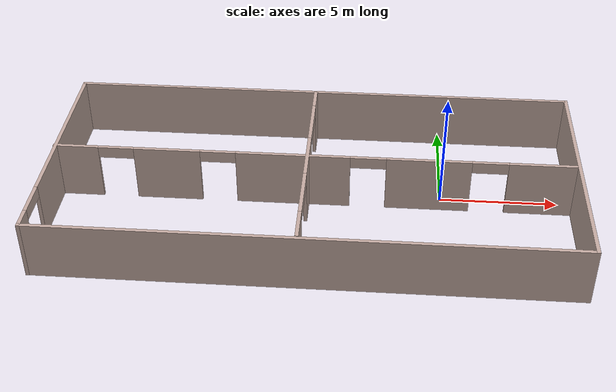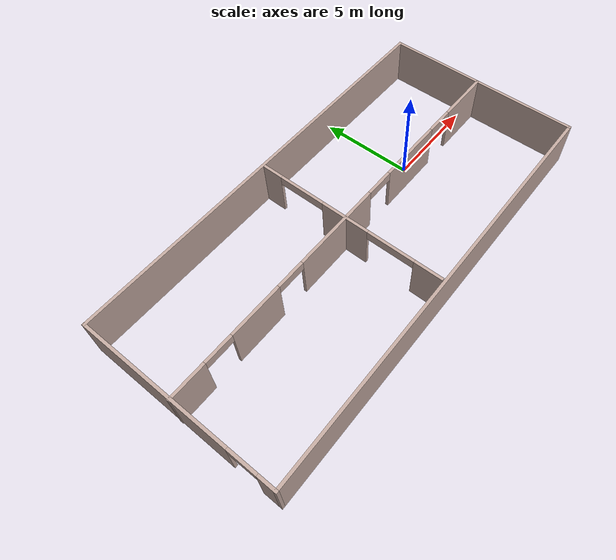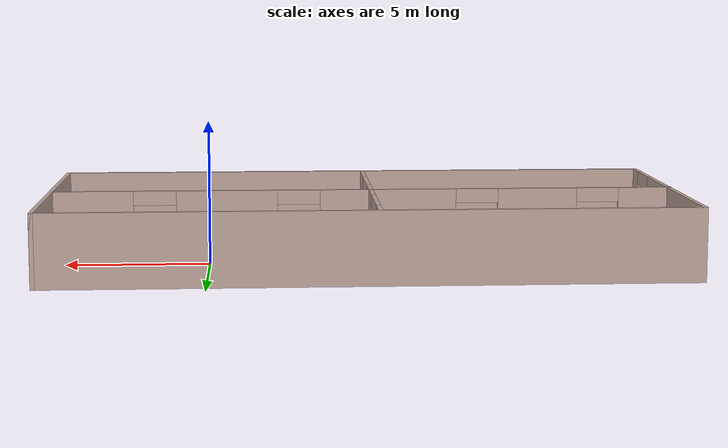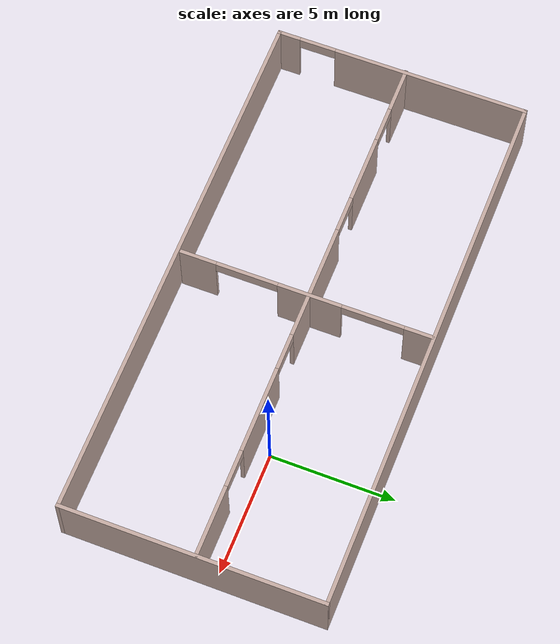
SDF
<?xml version='1.0'?>
<sdf version='1.6'>
  <model name='mybuilding'>
    <pose frame=''>-5.39438 -0.795609 0 0 -0 0</pose>
    <link name='Wall_1'>
      <pose frame=''>-10.9097 0 0 0 -0 1.5708</pose>
      <visual name='Wall_1_Visual_0'>
        <pose frame=''>-4.76721 0 1.25 0 -0 0</pose>
        <geometry>
          <box>
            <size>0.965586 0.15 2.5</size>
          </box>
        </geometry>
        <material>
          <script>
            <uri>file://media/materials/scripts/gazebo.material</uri>
            <name>Gazebo/Grey</name>
          </script>
          <ambient>0.760784 0.662745 0.627451 1</ambient>
        </material>
        <meta>
          <layer>0</layer>
        </meta>
      </visual>
      <collision name='Wall_1_Collision_0'>
        <geometry>
          <box>
            <size>0.965586 0.15 2.5</size>
          </box>
        </geometry>
        <pose frame=''>-4.76721 0 1.25 0 -0 0</pose>
      </collision>
      <visual name='Wall_1_Visual_1'>
        <pose frame=''>1.23279 0 1.25 0 -0 0</pose>
        <geometry>
          <box>
            <size>8.03441 0.15 2.5</size>
          </box>
        </geometry>
        <material>
          <script>
            <uri>file://media/materials/scripts/gazebo.material</uri>
            <name>Gazebo/Grey</name>
          </script>
          <ambient>0.760784 0.662745 0.627451 1</ambient>
        </material>
        <meta>
          <layer>0</layer>
        </meta>
      </visual>
      <collision name='Wall_1_Collision_1'>
        <geometry>
          <box>
            <size>8.03441 0.15 2.5</size>
          </box>
        </geometry>
        <pose frame=''>1.23279 0 1.25 0 -0 0</pose>
      </collision>
      <visual name='Wall_1_Visual_2'>
        <pose frame=''>-3.53441 0 2.25 0 -0 0</pose>
        <geometry>
          <box>
            <size>1.5 0.15 0.5</size>
          </box>
        </geometry>
        <material>
          <script>
            <uri>file://media/materials/scripts/gazebo.material</uri>
            <name>Gazebo/Grey</name>
          </script>
          <ambient>0.760784 0.662745 0.627451 1</ambient>
        </material>
        <meta>
          <layer>0</layer>
        </meta>
      </visual>
      <collision name='Wall_1_Collision_2'>
        <geometry>
          <box>
            <size>1.5 0.15 0.5</size>
          </box>
        </geometry>
        <pose frame=''>-3.53441 0 2.25 0 -0 0</pose>
      </collision>
    </link>
    <link name='Wall_2'>
      <collision name='Wall_2_Collision'>
        <geometry>
          <box>
            <size>22 0.15 2.5</size>
          </box>
        </geometry>
        <pose frame=''>0 0 1.25 0 -0 0</pose>
      </collision>
      <visual name='Wall_2_Visual'>
        <pose frame=''>0 0 1.25 0 -0 0</pose>
        <geometry>
          <box>
            <size>22 0.15 2.5</size>
          </box>
        </geometry>
        <material>
          <script>
            <uri>file://media/materials/scripts/gazebo.material</uri>
            <name>Gazebo/Grey</name>
          </script>
          <ambient>0.760784 0.662745 0.627451 1</ambient>
        </material>
        <meta>
          <layer>0</layer>
        </meta>
      </visual>
      <pose frame=''>0.015294 5.175 0 0 -0 0</pose>
    </link>
    <link name='Wall_3'>
      <collision name='Wall_3_Collision'>
        <geometry>
          <box>
            <size>10.5 0.15 2.5</size>
          </box>
        </geometry>
        <pose frame=''>0 0 1.25 0 -0 0</pose>
      </collision>
      <visual name='Wall_3_Visual'>
        <pose frame=''>0 0 1.25 0 -0 0</pose>
        <geometry>
          <box>
            <size>10.5 0.15 2.5</size>
          </box>
        </geometry>
        <material>
          <script>
            <uri>file://media/materials/scripts/gazebo.material</uri>
            <name>Gazebo/Grey</name>
          </script>
          <ambient>0.760784 0.662745 0.627451 1</ambient>
        </material>
        <meta>
          <layer>0</layer>
        </meta>
      </visual>
      <pose frame=''>10.9403 0 0 0 0 -1.5708</pose>
    </link>
    <link name='Wall_4'>
      <collision name='Wall_4_Collision'>
        <geometry>
          <box>
            <size>22 0.15 2.5</size>
          </box>
        </geometry>
        <pose frame=''>0 0 1.25 0 -0 0</pose>
      </collision>
      <visual name='Wall_4_Visual'>
        <pose frame=''>0 0 1.25 0 -0 0</pose>
        <geometry>
          <box>
            <size>22 0.15 2.5</size>
          </box>
        </geometry>
        <material>
          <script>
            <uri>file://media/materials/scripts/gazebo.material</uri>
            <name>Gazebo/Grey</name>
          </script>
          <ambient>0.760784 0.662745 0.627451 1</ambient>
        </material>
        <meta>
          <layer>0</layer>
        </meta>
      </visual>
      <pose frame=''>0.015294 -5.175 0 0 -0 3.14159</pose>
    </link>
    <link name='Wall_6'>
      <pose frame=''>-0.015296 0.17829 0 0 -0 0</pose>
      <visual name='Wall_6_Visual_0'>
        <pose frame=''>-10.0374 0 1.25 0 -0 0</pose>
        <geometry>
          <box>
            <size>1.92517 0.15 2.5</size>
          </box>
        </geometry>
        <material>
          <script>
            <uri>file://media/materials/scripts/gazebo.material</uri>
            <name>Gazebo/Grey</name>
          </script>
          <ambient>0.760784 0.662745 0.627451 1</ambient>
        </material>
        <meta>
          <layer>0</layer>
        </meta>
      </visual>
      <collision name='Wall_6_Collision_0'>
        <geometry>
          <box>
            <size>1.92517 0.15 2.5</size>
          </box>
        </geometry>
        <pose frame=''>-10.0374 0 1.25 0 -0 0</pose>
      </collision>
      <visual name='Wall_6_Visual_1'>
        <pose frame=''>-6.16822 0 1.25 0 -0 0</pose>
        <geometry>
          <box>
            <size>2.81322 0.15 2.5</size>
          </box>
        </geometry>
        <material>
          <script>
            <uri>file://media/materials/scripts/gazebo.material</uri>
            <name>Gazebo/Grey</name>
          </script>
          <ambient>0.760784 0.662745 0.627451 1</ambient>
        </material>
        <meta>
          <layer>0</layer>
        </meta>
      </visual>
      <collision name='Wall_6_Collision_1'>
        <geometry>
          <box>
            <size>2.81322 0.15 2.5</size>
          </box>
        </geometry>
        <pose frame=''>-6.16822 0 1.25 0 -0 0</pose>
      </collision>
      <visual name='Wall_6_Visual_2'>
        <pose frame=''>-0.860815 0 1.25 0 -0 0</pose>
        <geometry>
          <box>
            <size>4.80159 0.15 2.5</size>
          </box>
        </geometry>
        <material>
          <script>
            <uri>file://media/materials/scripts/gazebo.material</uri>
            <name>Gazebo/Grey</name>
          </script>
          <ambient>0.760784 0.662745 0.627451 1</ambient>
        </material>
        <meta>
          <layer>0</layer>
        </meta>
      </visual>
      <collision name='Wall_6_Collision_2'>
        <geometry>
          <box>
            <size>4.80159 0.15 2.5</size>
          </box>
        </geometry>
        <pose frame=''>-0.860815 0 1.25 0 -0 0</pose>
      </collision>
      <visual name='Wall_6_Visual_3'>
        <pose frame=''>4.81367 0 1.25 0 -0 0</pose>
        <geometry>
          <box>
            <size>3.54739 0.15 2.5</size>
          </box>
        </geometry>
        <material>
          <script>
            <uri>file://media/materials/scripts/gazebo.material</uri>
            <name>Gazebo/Grey</name>
          </script>
          <ambient>0.760784 0.662745 0.627451 1</ambient>
        </material>
        <meta>
          <layer>0</layer>
        </meta>
      </visual>
      <collision name='Wall_6_Collision_3'>
        <geometry>
          <box>
            <size>3.54739 0.15 2.5</size>
          </box>
        </geometry>
        <pose frame=''>4.81367 0 1.25 0 -0 0</pose>
      </collision>
      <visual name='Wall_6_Visual_4'>
        <pose frame=''>9.54368 0 1.25 0 -0 0</pose>
        <geometry>
          <box>
            <size>2.91263 0.15 2.5</size>
          </box>
        </geometry>
        <material>
          <script>
            <uri>file://media/materials/scripts/gazebo.material</uri>
            <name>Gazebo/Grey</name>
          </script>
          <ambient>0.760784 0.662745 0.627451 1</ambient>
        </material>
        <meta>
          <layer>0</layer>
        </meta>
      </visual>
      <collision name='Wall_6_Collision_4'>
        <geometry>
          <box>
            <size>2.91263 0.15 2.5</size>
          </box>
        </geometry>
        <pose frame=''>9.54368 0 1.25 0 -0 0</pose>
      </collision>
      <visual name='Wall_6_Visual_5'>
        <pose frame=''>-8.32483 0 2.25 0 -0 0</pose>
        <geometry>
          <box>
            <size>1.5 0.15 0.5</size>
          </box>
        </geometry>
        <material>
          <script>
            <uri>file://media/materials/scripts/gazebo.material</uri>
            <name>Gazebo/Grey</name>
          </script>
          <ambient>0.760784 0.662745 0.627451 1</ambient>
        </material>
        <meta>
          <layer>0</layer>
        </meta>
      </visual>
      <collision name='Wall_6_Collision_5'>
        <geometry>
          <box>
            <size>1.5 0.15 0.5</size>
          </box>
        </geometry>
        <pose frame=''>-8.32483 0 2.25 0 -0 0</pose>
      </collision>
      <visual name='Wall_6_Visual_6'>
        <pose frame=''>-4.01161 0 2.25 0 -0 0</pose>
        <geometry>
          <box>
            <size>1.5 0.15 0.5</size>
          </box>
        </geometry>
        <material>
          <script>
            <uri>file://media/materials/scripts/gazebo.material</uri>
            <name>Gazebo/Grey</name>
          </script>
          <ambient>0.760784 0.662745 0.627451 1</ambient>
        </material>
        <meta>
          <layer>0</layer>
        </meta>
      </visual>
      <collision name='Wall_6_Collision_6'>
        <geometry>
          <box>
            <size>1.5 0.15 0.5</size>
          </box>
        </geometry>
        <pose frame=''>-4.01161 0 2.25 0 -0 0</pose>
      </collision>
      <visual name='Wall_6_Visual_7'>
        <pose frame=''>2.28998 0 2.25 0 -0 0</pose>
        <geometry>
          <box>
            <size>1.5 0.15 0.5</size>
          </box>
        </geometry>
        <material>
          <script>
            <uri>file://media/materials/scripts/gazebo.material</uri>
            <name>Gazebo/Grey</name>
          </script>
          <ambient>0.760784 0.662745 0.627451 1</ambient>
        </material>
        <meta>
          <layer>0</layer>
        </meta>
      </visual>
      <collision name='Wall_6_Collision_7'>
        <geometry>
          <box>
            <size>1.5 0.15 0.5</size>
          </box>
        </geometry>
        <pose frame=''>2.28998 0 2.25 0 -0 0</pose>
      </collision>
      <visual name='Wall_6_Visual_8'>
        <pose frame=''>7.33737 0 2.25 0 -0 0</pose>
        <geometry>
          <box>
            <size>1.5 0.15 0.5</size>
          </box>
        </geometry>
        <material>
          <script>
            <uri>file://media/materials/scripts/gazebo.material</uri>
            <name>Gazebo/Grey</name>
          </script>
          <ambient>0.760784 0.662745 0.627451 1</ambient>
        </material>
        <meta>
          <layer>0</layer>
        </meta>
      </visual>
      <collision name='Wall_6_Collision_8'>
        <geometry>
          <box>
            <size>1.5 0.15 0.5</size>
          </box>
        </geometry>
        <pose frame=''>7.33737 0 2.25 0 -0 0</pose>
      </collision>
    </link>
    <link name='Wall_8'>
      <pose frame=''>-0.264307 0.053317 0 0 0 -1.5708</pose>
      <visual name='Wall_8_Visual_0'>
        <pose frame=''>-4.53478 0 1.25 0 -0 0</pose>
        <geometry>
          <box>
            <size>1.18045 0.15 2.5</size>
          </box>
        </geometry>
        <material>
          <script>
            <uri>file://media/materials/scripts/gazebo.material</uri>
            <name>Gazebo/Grey</name>
          </script>
          <ambient>0.760784 0.662745 0.627451 1</ambient>
        </material>
        <meta>
          <layer>0</layer>
        </meta>
      </visual>
      <collision name='Wall_8_Collision_0'>
        <geometry>
          <box>
            <size>1.18045 0.15 2.5</size>
          </box>
        </geometry>
        <pose frame=''>-4.53478 0 1.25 0 -0 0</pose>
      </collision>
      <visual name='Wall_8_Visual_1'>
        <pose frame=''>-0.155563 0 1.25 0 -0 0</pose>
        <geometry>
          <box>
            <size>2.57798 0.15 2.5</size>
          </box>
        </geometry>
        <material>
          <script>
            <uri>file://media/materials/scripts/gazebo.material</uri>
            <name>Gazebo/Grey</name>
          </script>
          <ambient>0.760784 0.662745 0.627451 1</ambient>
        </material>
        <meta>
          <layer>0</layer>
        </meta>
      </visual>
      <collision name='Wall_8_Collision_1'>
        <geometry>
          <box>
            <size>2.57798 0.15 2.5</size>
          </box>
        </geometry>
        <pose frame=''>-0.155563 0 1.25 0 -0 0</pose>
      </collision>
      <visual name='Wall_8_Visual_2'>
        <pose frame=''>4.37921 0 1.25 0 -0 0</pose>
        <geometry>
          <box>
            <size>1.49157 0.15 2.5</size>
          </box>
        </geometry>
        <material>
          <script>
            <uri>file://media/materials/scripts/gazebo.material</uri>
            <name>Gazebo/Grey</name>
          </script>
          <ambient>0.760784 0.662745 0.627451 1</ambient>
        </material>
        <meta>
          <layer>0</layer>
        </meta>
      </visual>
      <collision name='Wall_8_Collision_2'>
        <geometry>
          <box>
            <size>1.49157 0.15 2.5</size>
          </box>
        </geometry>
        <pose frame=''>4.37921 0 1.25 0 -0 0</pose>
      </collision>
      <visual name='Wall_8_Visual_3'>
        <pose frame=''>-2.69455 0 2.25 0 -0 0</pose>
        <geometry>
          <box>
            <size>2.5 0.15 0.5</size>
          </box>
        </geometry>
        <material>
          <script>
            <uri>file://media/materials/scripts/gazebo.material</uri>
            <name>Gazebo/Grey</name>
          </script>
          <ambient>0.760784 0.662745 0.627451 1</ambient>
        </material>
        <meta>
          <layer>0</layer>
        </meta>
      </visual>
      <collision name='Wall_8_Collision_3'>
        <geometry>
          <box>
            <size>2.5 0.15 0.5</size>
          </box>
        </geometry>
        <pose frame=''>-2.69455 0 2.25 0 -0 0</pose>
      </collision>
      <visual name='Wall_8_Visual_4'>
        <pose frame=''>2.38343 0 2.25 0 -0 0</pose>
        <geometry>
          <box>
            <size>2.5 0.15 0.5</size>
          </box>
        </geometry>
        <material>
          <script>
            <uri>file://media/materials/scripts/gazebo.material</uri>
            <name>Gazebo/Grey</name>
          </script>
          <ambient>0.760784 0.662745 0.627451 1</ambient>
        </material>
        <meta>
          <layer>0</layer>
        </meta>
      </visual>
      <collision name='Wall_8_Collision_4'>
        <geometry>
          <box>
            <size>2.5 0.15 0.5</size>
          </box>
        </geometry>
        <pose frame=''>2.38343 0 2.25 0 -0 0</pose>
      </collision>
    </link>
    <static>1</static>
  </model>
</sdf>
